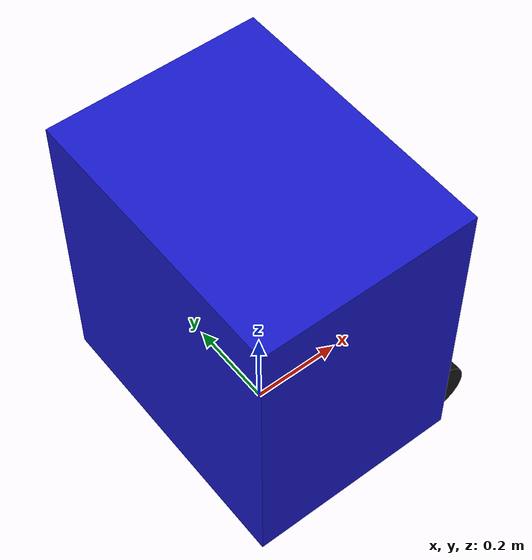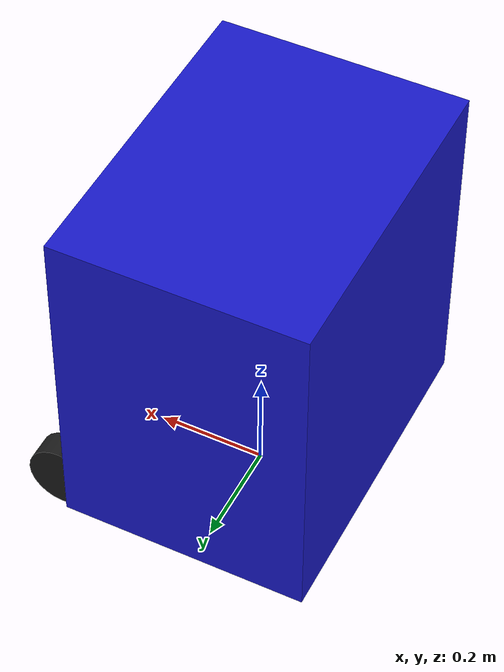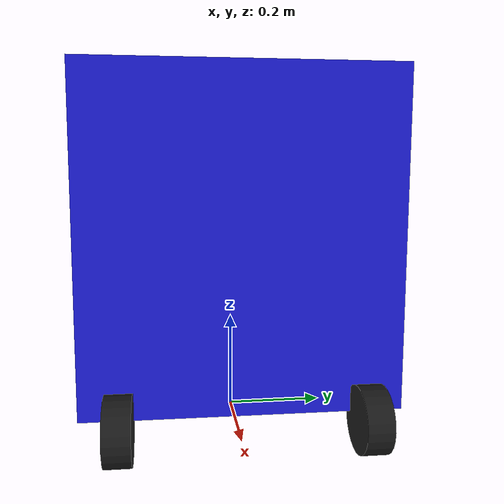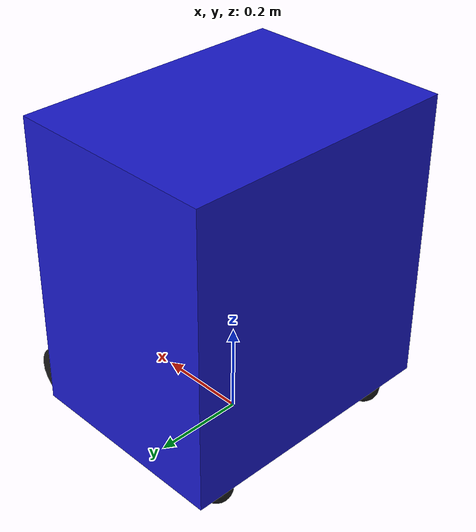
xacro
<?xml version="1.0"?>
<robot xmlns:xacro="http://www.ros.org/wiki/xacro" name="mail_rover">

    <xacro:property name="total_mass" value="22.0"/>
    <xacro:property name="chassis_length" value="0.4572"/>
    <xacro:property name="chassis_width" value="0.6096"/>
    <xacro:property name="chassis_height" value="0.6477"/>
    <xacro:property name="wheel_radius" value="0.0635"/>
    <xacro:property name="wheel_thickness" value="0.05"/>
    <xacro:property name="wheel_mass" value="1.0"/>
    <xacro:property name="front_wheel_offset_x" value="0.27"/>
    <xacro:property name="wheel_offset_y" value="0.2286"/>
    <xacro:property name="rear_caster_offset_x" value="-0.18"/>
    <xacro:property name="rear_caster_offset_y" value="0.22"/>
    <xacro:property name="caster_radius" value="0.035"/>
    <xacro:property name="laser_height" value="0.10"/>
    <material name="blue"><color rgba="0.1 0.1 0.8 1.0"/></material>
    <xacro:property name="pi" value="3.141592653589793"/>
    <material name="black"><color rgba="0.1 0.1 0.1 1.0"/></material>

    <xacro:macro name="box_inertia" params="m l w h xyz">
      <inertial>
        <origin xyz="${xyz}" rpy="0 0 0" />
        <mass value="${m}"/>
        <inertia ixx="${(m/12) * (w*w + h*h)}" ixy="0.0" ixz="0.0"
                 iyy="${(m/12) * (l*l + h*h)}" iyz="0.0"
                 izz="${(m/12) * (l*l + w*w)}"/>
      </inertial>
    </xacro:macro>

    <xacro:macro name="cylinder_inertia" params="m r h">
      <inertial>
         <origin xyz="0 0 0" rpy="${pi/2} 0 0"/>
         <mass value="${m}"/>
         <inertia ixx="${(m/12) * (3*r*r + h*h)}" ixy="0.0" ixz="0.0" iyy="${(m/12) * (3*r*r + h*h)}" iyz="0.0" izz="${(m/2) * (r*r)}"/>
         </inertial>
    </xacro:macro>

    <link name="base_footprint"/>

    <link name="base_link">
        <visual>
            <origin xyz="0 0 ${chassis_height/2}" rpy="0 0 0"/>
            <geometry><box size="${chassis_length} ${chassis_width} ${chassis_height}"/></geometry>
            <material name="blue"/>
        </visual>
        <collision>
            <origin xyz="0 0 ${chassis_height/2}" rpy="0 0 0"/>
            <geometry><box size="${chassis_length} ${chassis_width} ${chassis_height}"/></geometry>
        </collision>
        <xacro:box_inertia m="${total_mass - (2 * wheel_mass)}" l="${chassis_length}" w="${chassis_width}" h="${chassis_height}" xyz="0 0 0.15"/>
    </link>

    <joint name="base_joint" type="fixed">
        <parent link="base_footprint"/>
        <child link="base_link"/>
        <origin xyz="0 0 ${wheel_radius}" rpy="0 0 0"/>
    </joint>

    <xacro:macro name="wheel" params="prefix x_reflect y_reflect">
        <link name="${prefix}_wheel">
            <visual>
                <origin xyz="0 0 0" rpy="${pi/2} 0 0"/>
                <geometry><cylinder radius="${wheel_radius}" length="${wheel_thickness}"/></geometry>
                <material name="black"/>
            </visual>
            <collision>
                <origin xyz="0 0 0" rpy="${pi/2} 0 0"/>
                <geometry><cylinder radius="${wheel_radius}" length="${wheel_thickness}"/></geometry>
            </collision>
            <xacro:cylinder_inertia m="${wheel_mass}" r="${wheel_radius}" h="${wheel_thickness}"/>
        </link>

        <joint name="${prefix}_wheel_joint" type="continuous">
            <parent link="base_link"/>
            <child link="${prefix}_wheel"/>
            <origin xyz="${x_reflect*front_wheel_offset_x} ${y_reflect*wheel_offset_y} 0" rpy="0 0 0"/>
            <axis xyz="0 1 0"/>
        </joint>
    </xacro:macro>

    <xacro:macro name="caster" params="prefix x_reflect y_reflect">
        <link name="${prefix}_caster">
            <visual>
                <geometry><sphere radius="${caster_radius}"/></geometry>
                <material name="black"/>
            </visual>
            <collision>
                <geometry><sphere radius="${caster_radius}"/></geometry>
            </collision>
        </link>

        <joint name="${prefix}_caster_joint" type="fixed">
            <parent link="base_link"/>
            <child link="${prefix}_caster"/>
            <origin xyz="${x_reflect*rear_caster_offset_x} ${y_reflect*rear_caster_offset_y} ${caster_radius - wheel_radius}" rpy="0 0 0"/>
        </joint>
    </xacro:macro>

    <xacro:wheel prefix="front_left"  x_reflect="1"  y_reflect="1" />
    <xacro:wheel prefix="front_right" x_reflect="1"  y_reflect="-1" />
    <xacro:caster prefix="rear_left"  x_reflect="1" y_reflect="1" />
    <xacro:caster prefix="rear_right" x_reflect="1" y_reflect="-1" />

    <link name="laser">
        <visual>
            <geometry>
                <cylinder radius="0.05" length="0.04"/>
            </geometry>
            <material name="black"/>
        </visual>
        <collision>
            <geometry>
                <cylinder radius="0.05" length="0.04"/>
            </geometry>
        </collision>
        <xacro:cylinder_inertia m="0.1" r="0.05" h="0.04"/>
    </link>

    <joint name="laser_joint" type="fixed">
        <parent link="base_link"/>
        <child link="laser"/>
        <origin xyz="0 0 ${laser_height}" rpy="0 0 0"/>
    </joint>

    <gazebo reference="laser">
    <material>Gazebo/Black</material>
    <sensor name="laser" type="ray">
      <pose> 0 0 0 0 0 0 </pose>
      <visualize>true</visualize>
      <update_rate>5</update_rate>
      <ray>
        <scan>
          <horizontal>
            <samples>360</samples>
            <min_angle>-3.14159</min_angle>
            <max_angle>3.14159</max_angle>
          </horizontal>
        </scan>
        <range>
          <min>0.3</min>
          <max>12</max>
        </range>
      </ray>
      <plugin name="laser_controller" filename="libgazebo_ros_ray_sensor.so">
        <ros>
          <argument>~/out:=scan</argument>
        </ros>
        <output_type>sensor_msgs/LaserScan</output_type>
        <frame_name>laser</frame_name>
      </plugin>
    </sensor>
  </gazebo>

  <gazebo>
    <plugin name="skid_steer_drive" filename="libgazebo_ros_diff_drive.so">
      <num_wheel_pairs>1</num_wheel_pairs>
      <left_joint>front_left_wheel_joint</left_joint>
      <right_joint>front_right_wheel_joint</right_joint>

      <wheel_separation>0.4572</wheel_separation>
      <wheel_diameter>0.127</wheel_diameter>

      <max_wheel_torque>20</max_wheel_torque>
      <max_wheel_acceleration>1.0</max_wheel_acceleration>

      <odometry_frame>odom</odometry_frame>
      <robot_base_frame>base_footprint</robot_base_frame>
      <publish_odom>false</publish_odom>
      <publish_odom_tf>false</publish_odom_tf>
      <publish_wheel_tf>true</publish_wheel_tf>
    </plugin>
  </gazebo>

</robot>
